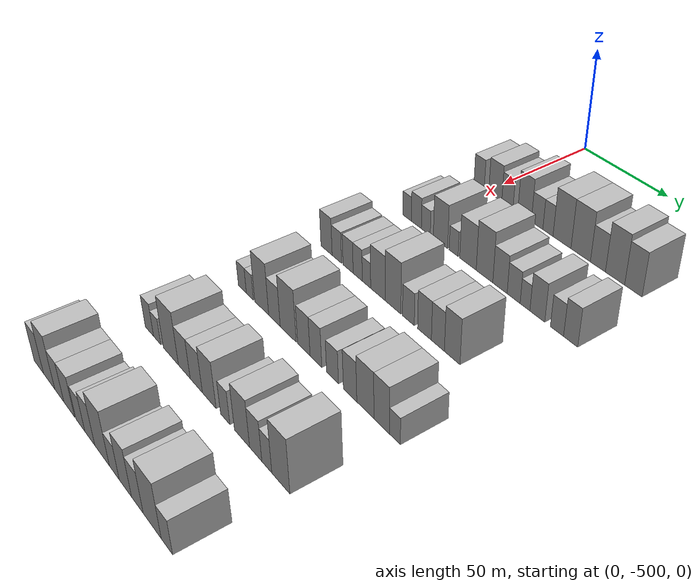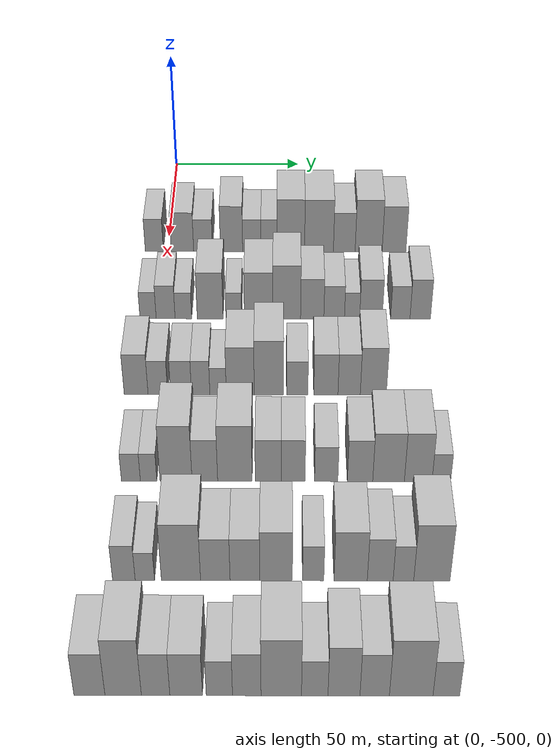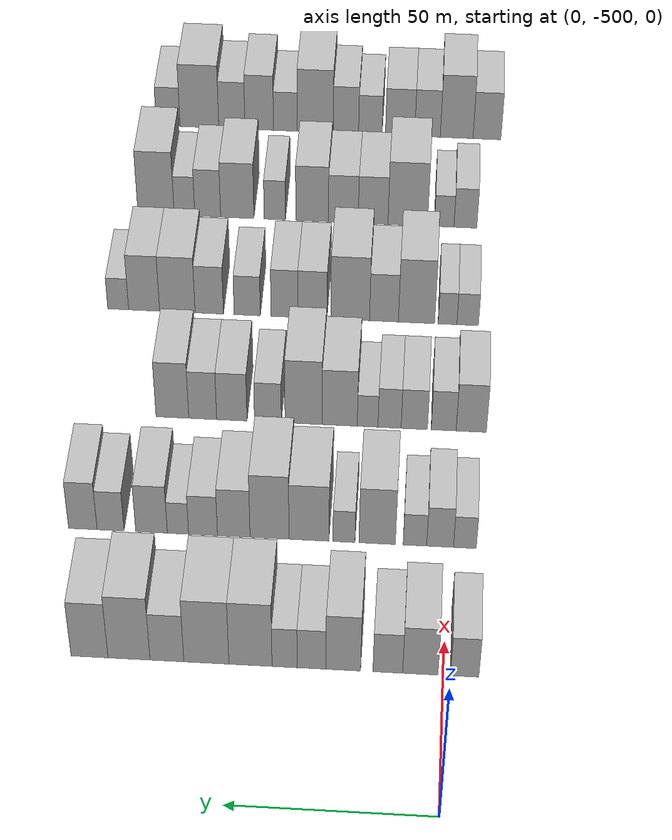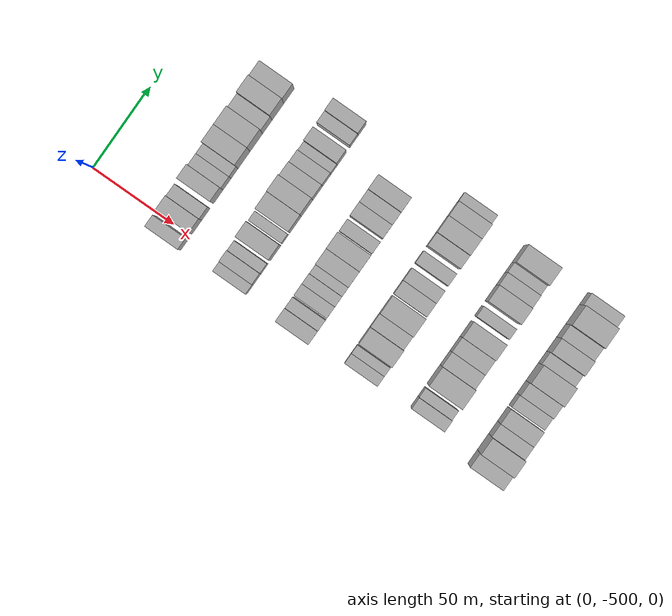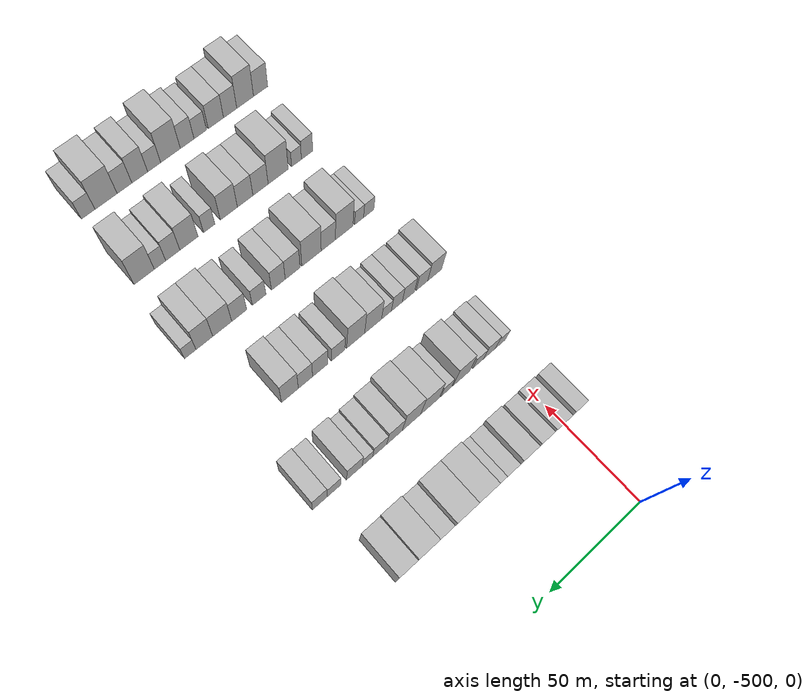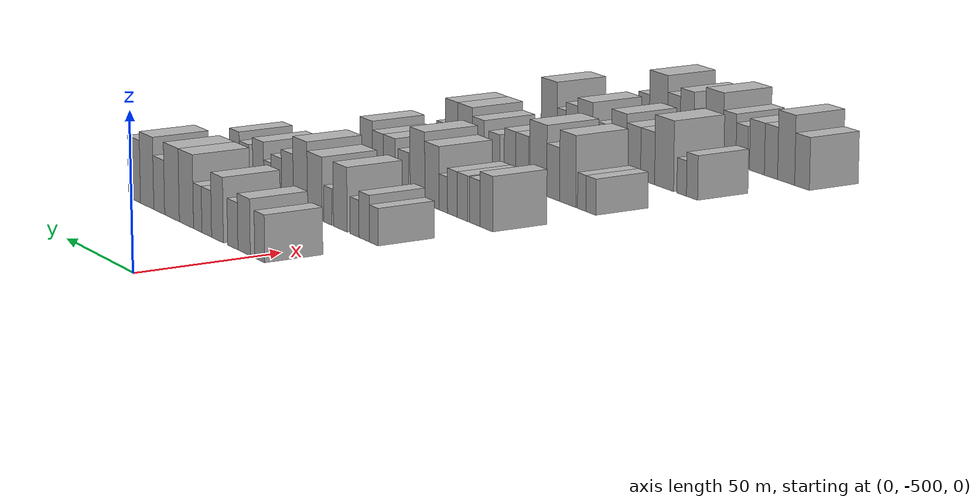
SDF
<sdf version="1.6">
 <world name="default">
  <model name="building_14">
   <static>1</static>
   <pose>50.0000 -505.0866 0 0.000000 0.000000 0.000000</pose>
   <link name="link">
    <pose>0 0 7.50 0 0 0</pose>
    <collision name="collision"><geometry><box><size>20.0000 6.8700 15.0000</size></box></geometry></collision>
    <visual name="visual">
     <cast_shadows>0</cast_shadows>
     <geometry><box><size>20.0000 6.8700 15.0000</size></box></geometry>
     <material>
      <script>
       <uri>model://HANNAS_wall/materials/scripts</uri>
       <uri>model://HANNAS_wall/materials/textures</uri>
       <name>vrc/HANNAS_wall</name>
      </script>
     </material>
    </visual>
   </link>
  </model>
  <model name="building_15">
   <static>1</static>
   <pose>50.0000 -494.3796 0 0.000000 0.000000 0.000000</pose>
   <link name="link">
    <pose>0 0 9.00 0 0 0</pose>
    <collision name="collision"><geometry><box><size>20.0000 8.5440 18.0000</size></box></geometry></collision>
    <visual name="visual">
     <cast_shadows>0</cast_shadows>
     <geometry><box><size>20.0000 8.5440 18.0000</size></box></geometry>
     <material>
      <script>
       <uri>model://HANNAS_wall/materials/scripts</uri>
       <uri>model://HANNAS_wall/materials/textures</uri>
       <name>vrc/HANNAS_wall</name>
      </script>
     </material>
    </visual>
   </link>
  </model>
  <model name="building_16">
   <static>1</static>
   <pose>50.0000 -486.5111 0 0.000000 0.000000 0.000000</pose>
   <link name="link">
    <pose>0 0 7.50 0 0 0</pose>
    <collision name="collision"><geometry><box><size>20.0000 7.1932 15.0000</size></box></geometry></collision>
    <visual name="visual">
     <cast_shadows>0</cast_shadows>
     <geometry><box><size>20.0000 7.1932 15.0000</size></box></geometry>
     <material>
      <script>
       <uri>model://HANNAS_wall/materials/scripts</uri>
       <uri>model://HANNAS_wall/materials/textures</uri>
       <name>vrc/HANNAS_wall</name>
      </script>
     </material>
    </visual>
   </link>
  </model>
  <model name="building_17">
   <static>1</static>
   <pose>50.0000 -475.6811 0 0.000000 0.000000 0.000000</pose>
   <link name="link">
    <pose>0 0 10.50 0 0 0</pose>
    <collision name="collision"><geometry><box><size>20.0000 8.4666 21.0000</size></box></geometry></collision>
    <visual name="visual">
     <cast_shadows>0</cast_shadows>
     <geometry><box><size>20.0000 8.4666 21.0000</size></box></geometry>
     <material>
      <script>
       <uri>model://HANNAS_wall/materials/scripts</uri>
       <uri>model://HANNAS_wall/materials/textures</uri>
       <name>vrc/HANNAS_wall</name>
      </script>
     </material>
    </visual>
   </link>
  </model>
  <model name="building_18">
   <static>1</static>
   <pose>50.0000 -467.9588 0 0.000000 0.000000 0.000000</pose>
   <link name="link">
    <pose>0 0 7.50 0 0 0</pose>
    <collision name="collision"><geometry><box><size>20.0000 6.9781 15.0000</size></box></geometry></collision>
    <visual name="visual">
     <cast_shadows>0</cast_shadows>
     <geometry><box><size>20.0000 6.9781 15.0000</size></box></geometry>
     <material>
      <script>
       <uri>model://HANNAS_wall/materials/scripts</uri>
       <uri>model://HANNAS_wall/materials/textures</uri>
       <name>vrc/HANNAS_wall</name>
      </script>
     </material>
    </visual>
   </link>
  </model>
  <model name="building_19">
   <static>1</static>
   <pose>50.0000 -461.4284 0 0.000000 0.000000 0.000000</pose>
   <link name="link">
    <pose>0 0 7.50 0 0 0</pose>
    <collision name="collision"><geometry><box><size>20.0000 6.0826 15.0000</size></box></geometry></collision>
    <visual name="visual">
     <cast_shadows>0</cast_shadows>
     <geometry><box><size>20.0000 6.0826 15.0000</size></box></geometry>
     <material>
      <script>
       <uri>model://HANNAS_wall/materials/scripts</uri>
       <uri>model://HANNAS_wall/materials/textures</uri>
       <name>vrc/HANNAS_wall</name>
      </script>
     </material>
    </visual>
   </link>
  </model>
  <model name="building_20">
   <static>1</static>
   <pose>50.0000 -453.1435 0 0.000000 0.000000 0.000000</pose>
   <link name="link">
    <pose>0 0 12.00 0 0 0</pose>
    <collision name="collision"><geometry><box><size>20.0000 10.4874 24.0000</size></box></geometry></collision>
    <visual name="visual">
     <cast_shadows>0</cast_shadows>
     <geometry><box><size>20.0000 10.4874 24.0000</size></box></geometry>
     <material>
      <script>
       <uri>model://HANNAS_wall/materials/scripts</uri>
       <uri>model://HANNAS_wall/materials/textures</uri>
       <name>vrc/HANNAS_wall</name>
      </script>
     </material>
    </visual>
   </link>
  </model>
  <model name="building_21">
   <static>1</static>
   <pose>50.0000 -442.4043 0 0.000000 0.000000 0.000000</pose>
   <link name="link">
    <pose>0 0 12.00 0 0 0</pose>
    <collision name="collision"><geometry><box><size>20.0000 10.9910 24.0000</size></box></geometry></collision>
    <visual name="visual">
     <cast_shadows>0</cast_shadows>
     <geometry><box><size>20.0000 10.9910 24.0000</size></box></geometry>
     <material>
      <script>
       <uri>model://HANNAS_wall/materials/scripts</uri>
       <uri>model://HANNAS_wall/materials/textures</uri>
       <name>vrc/HANNAS_wall</name>
      </script>
     </material>
    </visual>
   </link>
  </model>
  <model name="building_22">
   <static>1</static>
   <pose>50.0000 -432.7748 0 0.000000 0.000000 0.000000</pose>
   <link name="link">
    <pose>0 0 9.00 0 0 0</pose>
    <collision name="collision"><geometry><box><size>20.0000 8.2678 18.0000</size></box></geometry></collision>
    <visual name="visual">
     <cast_shadows>0</cast_shadows>
     <geometry><box><size>20.0000 8.2678 18.0000</size></box></geometry>
     <material>
      <script>
       <uri>model://HANNAS_wall/materials/scripts</uri>
       <uri>model://HANNAS_wall/materials/textures</uri>
       <name>vrc/HANNAS_wall</name>
      </script>
     </material>
    </visual>
   </link>
  </model>
  <model name="building_23">
   <static>1</static>
   <pose>50.0000 -423.5001 0 0.000000 0.000000 0.000000</pose>
   <link name="link">
    <pose>0 0 12.00 0 0 0</pose>
    <collision name="collision"><geometry><box><size>20.0000 10.2818 24.0000</size></box></geometry></collision>
    <visual name="visual">
     <cast_shadows>0</cast_shadows>
     <geometry><box><size>20.0000 10.2818 24.0000</size></box></geometry>
     <material>
      <script>
       <uri>model://HANNAS_wall/materials/scripts</uri>
       <uri>model://HANNAS_wall/materials/textures</uri>
       <name>vrc/HANNAS_wall</name>
      </script>
     </material>
    </visual>
   </link>
  </model>
  <model name="building_24">
   <static>1</static>
   <pose>50.0000 -413.8279 0 0.000000 0.000000 0.000000</pose>
   <link name="link">
    <pose>0 0 10.50 0 0 0</pose>
    <collision name="collision"><geometry><box><size>20.0000 9.0625 21.0000</size></box></geometry></collision>
    <visual name="visual">
     <cast_shadows>0</cast_shadows>
     <geometry><box><size>20.0000 9.0625 21.0000</size></box></geometry>
     <material>
      <script>
       <uri>model://HANNAS_wall/materials/scripts</uri>
       <uri>model://HANNAS_wall/materials/textures</uri>
       <name>vrc/HANNAS_wall</name>
      </script>
     </material>
    </visual>
   </link>
  </model>
  <model name="building_151">
   <static>1</static>
   <pose>90.0000 -504.5698 0 0.000000 0.000000 0.000000</pose>
   <link name="link">
    <pose>0 0 6.00 0 0 0</pose>
    <collision name="collision"><geometry><box><size>20.0000 5.8009 12.0000</size></box></geometry></collision>
    <visual name="visual">
     <cast_shadows>0</cast_shadows>
     <geometry><box><size>20.0000 5.8009 12.0000</size></box></geometry>
     <material>
      <script>
       <uri>model://HANNAS_wall/materials/scripts</uri>
       <uri>model://HANNAS_wall/materials/textures</uri>
       <name>vrc/HANNAS_wall</name>
      </script>
     </material>
    </visual>
   </link>
  </model>
  <model name="building_152">
   <static>1</static>
   <pose>90.0000 -498.2702 0 0.000000 0.000000 0.000000</pose>
   <link name="link">
    <pose>0 0 7.50 0 0 0</pose>
    <collision name="collision"><geometry><box><size>20.0000 6.7983 15.0000</size></box></geometry></collision>
    <visual name="visual">
     <cast_shadows>0</cast_shadows>
     <geometry><box><size>20.0000 6.7983 15.0000</size></box></geometry>
     <material>
      <script>
       <uri>model://HANNAS_wall/materials/scripts</uri>
       <uri>model://HANNAS_wall/materials/textures</uri>
       <name>vrc/HANNAS_wall</name>
      </script>
     </material>
    </visual>
   </link>
  </model>
  <model name="building_153">
   <static>1</static>
   <pose>90.0000 -491.8866 0 0.000000 0.000000 0.000000</pose>
   <link name="link">
    <pose>0 0 6.00 0 0 0</pose>
    <collision name="collision"><geometry><box><size>20.0000 5.9689 12.0000</size></box></geometry></collision>
    <visual name="visual">
     <cast_shadows>0</cast_shadows>
     <geometry><box><size>20.0000 5.9689 12.0000</size></box></geometry>
     <material>
      <script>
       <uri>model://HANNAS_wall/materials/scripts</uri>
       <uri>model://HANNAS_wall/materials/textures</uri>
       <name>vrc/HANNAS_wall</name>
      </script>
     </material>
    </visual>
   </link>
  </model>
  <model name="building_154">
   <static>1</static>
   <pose>90.0000 -482.2595 0 0.000000 0.000000 0.000000</pose>
   <link name="link">
    <pose>0 0 10.50 0 0 0</pose>
    <collision name="collision"><geometry><box><size>20.0000 9.2852 21.0000</size></box></geometry></collision>
    <visual name="visual">
     <cast_shadows>0</cast_shadows>
     <geometry><box><size>20.0000 9.2852 21.0000</size></box></geometry>
     <material>
      <script>
       <uri>model://HANNAS_wall/materials/scripts</uri>
       <uri>model://HANNAS_wall/materials/textures</uri>
       <name>vrc/HANNAS_wall</name>
      </script>
     </material>
    </visual>
   </link>
  </model>
  <model name="building_155">
   <static>1</static>
   <pose>90.0000 -473.7920 0 0.000000 0.000000 0.000000</pose>
   <link name="link">
    <pose>0 0 6.00 0 0 0</pose>
    <collision name="collision"><geometry><box><size>20.0000 5.6497 12.0000</size></box></geometry></collision>
    <visual name="visual">
     <cast_shadows>0</cast_shadows>
     <geometry><box><size>20.0000 5.6497 12.0000</size></box></geometry>
     <material>
      <script>
       <uri>model://HANNAS_wall/materials/scripts</uri>
       <uri>model://HANNAS_wall/materials/textures</uri>
       <name>vrc/HANNAS_wall</name>
      </script>
     </material>
    </visual>
   </link>
  </model>
  <model name="building_156">
   <static>1</static>
   <pose>90.0000 -464.8663 0 0.000000 0.000000 0.000000</pose>
   <link name="link">
    <pose>0 0 10.50 0 0 0</pose>
    <collision name="collision"><geometry><box><size>20.0000 10.2016 21.0000</size></box></geometry></collision>
    <visual name="visual">
     <cast_shadows>0</cast_shadows>
     <geometry><box><size>20.0000 10.2016 21.0000</size></box></geometry>
     <material>
      <script>
       <uri>model://HANNAS_wall/materials/scripts</uri>
       <uri>model://HANNAS_wall/materials/textures</uri>
       <name>vrc/HANNAS_wall</name>
      </script>
     </material>
    </visual>
   </link>
  </model>
  <model name="building_157">
   <static>1</static>
   <pose>90.0000 -454.7904 0 0.000000 0.000000 0.000000</pose>
   <link name="link">
    <pose>0 0 12.00 0 0 0</pose>
    <collision name="collision"><geometry><box><size>20.0000 9.9503 24.0000</size></box></geometry></collision>
    <visual name="visual">
     <cast_shadows>0</cast_shadows>
     <geometry><box><size>20.0000 9.9503 24.0000</size></box></geometry>
     <material>
      <script>
       <uri>model://HANNAS_wall/materials/scripts</uri>
       <uri>model://HANNAS_wall/materials/textures</uri>
       <name>vrc/HANNAS_wall</name>
      </script>
     </material>
    </visual>
   </link>
  </model>
  <model name="building_158">
   <static>1</static>
   <pose>90.0000 -445.6402 0 0.000000 0.000000 0.000000</pose>
   <link name="link">
    <pose>0 0 9.00 0 0 0</pose>
    <collision name="collision"><geometry><box><size>20.0000 8.3501 18.0000</size></box></geometry></collision>
    <visual name="visual">
     <cast_shadows>0</cast_shadows>
     <geometry><box><size>20.0000 8.3501 18.0000</size></box></geometry>
     <material>
      <script>
       <uri>model://HANNAS_wall/materials/scripts</uri>
       <uri>model://HANNAS_wall/materials/textures</uri>
       <name>vrc/HANNAS_wall</name>
      </script>
     </material>
    </visual>
   </link>
  </model>
  <model name="building_159">
   <static>1</static>
   <pose>90.0000 -437.7634 0 0.000000 0.000000 0.000000</pose>
   <link name="link">
    <pose>0 0 7.50 0 0 0</pose>
    <collision name="collision"><geometry><box><size>20.0000 7.4035 15.0000</size></box></geometry></collision>
    <visual name="visual">
     <cast_shadows>0</cast_shadows>
     <geometry><box><size>20.0000 7.4035 15.0000</size></box></geometry>
     <material>
      <script>
       <uri>model://HANNAS_wall/materials/scripts</uri>
       <uri>model://HANNAS_wall/materials/textures</uri>
       <name>vrc/HANNAS_wall</name>
      </script>
     </material>
    </visual>
   </link>
  </model>
  <model name="building_160">
   <static>1</static>
   <pose>90.0000 -431.3394 0 0.000000 0.000000 0.000000</pose>
   <link name="link">
    <pose>0 0 6.00 0 0 0</pose>
    <collision name="collision"><geometry><box><size>20.0000 5.4446 12.0000</size></box></geometry></collision>
    <visual name="visual">
     <cast_shadows>0</cast_shadows>
     <geometry><box><size>20.0000 5.4446 12.0000</size></box></geometry>
     <material>
      <script>
       <uri>model://HANNAS_wall/materials/scripts</uri>
       <uri>model://HANNAS_wall/materials/textures</uri>
       <name>vrc/HANNAS_wall</name>
      </script>
     </material>
    </visual>
   </link>
  </model>
  <model name="building_161">
   <static>1</static>
   <pose>90.0000 -424.5576 0 0.000000 0.000000 0.000000</pose>
   <link name="link">
    <pose>0 0 9.00 0 0 0</pose>
    <collision name="collision"><geometry><box><size>20.0000 8.1190 18.0000</size></box></geometry></collision>
    <visual name="visual">
     <cast_shadows>0</cast_shadows>
     <geometry><box><size>20.0000 8.1190 18.0000</size></box></geometry>
     <material>
      <script>
       <uri>model://HANNAS_wall/materials/scripts</uri>
       <uri>model://HANNAS_wall/materials/textures</uri>
       <name>vrc/HANNAS_wall</name>
      </script>
     </material>
    </visual>
   </link>
  </model>
  <model name="building_162">
   <static>1</static>
   <pose>90.0000 -414.0226 0 0.000000 0.000000 0.000000</pose>
   <link name="link">
    <pose>0 0 7.50 0 0 0</pose>
    <collision name="collision"><geometry><box><size>20.0000 6.9511 15.0000</size></box></geometry></collision>
    <visual name="visual">
     <cast_shadows>0</cast_shadows>
     <geometry><box><size>20.0000 6.9511 15.0000</size></box></geometry>
     <material>
      <script>
       <uri>model://HANNAS_wall/materials/scripts</uri>
       <uri>model://HANNAS_wall/materials/textures</uri>
       <name>vrc/HANNAS_wall</name>
      </script>
     </material>
    </visual>
   </link>
  </model>
  <model name="building_163">
   <static>1</static>
   <pose>90.0000 -406.8737 0 0.000000 0.000000 0.000000</pose>
   <link name="link">
    <pose>0 0 9.00 0 0 0</pose>
    <collision name="collision"><geometry><box><size>20.0000 7.3466 18.0000</size></box></geometry></collision>
    <visual name="visual">
     <cast_shadows>0</cast_shadows>
     <geometry><box><size>20.0000 7.3466 18.0000</size></box></geometry>
     <material>
      <script>
       <uri>model://HANNAS_wall/materials/scripts</uri>
       <uri>model://HANNAS_wall/materials/textures</uri>
       <name>vrc/HANNAS_wall</name>
      </script>
     </material>
    </visual>
   </link>
  </model>
  <model name="building_296">
   <static>1</static>
   <pose>130.0000 -505.6824 0 0.000000 0.000000 0.000000</pose>
   <link name="link">
    <pose>0 0 9.00 0 0 0</pose>
    <collision name="collision"><geometry><box><size>20.0000 8.0399 18.0000</size></box></geometry></collision>
    <visual name="visual">
     <cast_shadows>0</cast_shadows>
     <geometry><box><size>20.0000 8.0399 18.0000</size></box></geometry>
     <material>
      <script>
       <uri>model://HANNAS_wall/materials/scripts</uri>
       <uri>model://HANNAS_wall/materials/textures</uri>
       <name>vrc/HANNAS_wall</name>
      </script>
     </material>
    </visual>
   </link>
  </model>
  <model name="building_297">
   <static>1</static>
   <pose>130.0000 -498.3432 0 0.000000 0.000000 0.000000</pose>
   <link name="link">
    <pose>0 0 7.50 0 0 0</pose>
    <collision name="collision"><geometry><box><size>20.0000 6.6384 15.0000</size></box></geometry></collision>
    <visual name="visual">
     <cast_shadows>0</cast_shadows>
     <geometry><box><size>20.0000 6.6384 15.0000</size></box></geometry>
     <material>
      <script>
       <uri>model://HANNAS_wall/materials/scripts</uri>
       <uri>model://HANNAS_wall/materials/textures</uri>
       <name>vrc/HANNAS_wall</name>
      </script>
     </material>
    </visual>
   </link>
  </model>
  <model name="building_298">
   <static>1</static>
   <pose>130.0000 -490.5147 0 0.000000 0.000000 0.000000</pose>
   <link name="link">
    <pose>0 0 7.50 0 0 0</pose>
    <collision name="collision"><geometry><box><size>20.0000 7.0187 15.0000</size></box></geometry></collision>
    <visual name="visual">
     <cast_shadows>0</cast_shadows>
     <geometry><box><size>20.0000 7.0187 15.0000</size></box></geometry>
     <material>
      <script>
       <uri>model://HANNAS_wall/materials/scripts</uri>
       <uri>model://HANNAS_wall/materials/textures</uri>
       <name>vrc/HANNAS_wall</name>
      </script>
     </material>
    </visual>
   </link>
  </model>
  <model name="building_299">
   <static>1</static>
   <pose>130.0000 -483.9126 0 0.000000 0.000000 0.000000</pose>
   <link name="link">
    <pose>0 0 7.50 0 0 0</pose>
    <collision name="collision"><geometry><box><size>20.0000 6.1856 15.0000</size></box></geometry></collision>
    <visual name="visual">
     <cast_shadows>0</cast_shadows>
     <geometry><box><size>20.0000 6.1856 15.0000</size></box></geometry>
     <material>
      <script>
       <uri>model://HANNAS_wall/materials/scripts</uri>
       <uri>model://HANNAS_wall/materials/textures</uri>
       <name>vrc/HANNAS_wall</name>
      </script>
     </material>
    </visual>
   </link>
  </model>
  <model name="building_300">
   <static>1</static>
   <pose>130.0000 -478.0517 0 0.000000 0.000000 0.000000</pose>
   <link name="link">
    <pose>0 0 6.00 0 0 0</pose>
    <collision name="collision"><geometry><box><size>20.0000 5.5362 12.0000</size></box></geometry></collision>
    <visual name="visual">
     <cast_shadows>0</cast_shadows>
     <geometry><box><size>20.0000 5.5362 12.0000</size></box></geometry>
     <material>
      <script>
       <uri>model://HANNAS_wall/materials/scripts</uri>
       <uri>model://HANNAS_wall/materials/textures</uri>
       <name>vrc/HANNAS_wall</name>
      </script>
     </material>
    </visual>
   </link>
  </model>
  <model name="building_301">
   <static>1</static>
   <pose>130.0000 -470.5623 0 0.000000 0.000000 0.000000</pose>
   <link name="link">
    <pose>0 0 10.50 0 0 0</pose>
    <collision name="collision"><geometry><box><size>20.0000 9.4425 21.0000</size></box></geometry></collision>
    <visual name="visual">
     <cast_shadows>0</cast_shadows>
     <geometry><box><size>20.0000 9.4425 21.0000</size></box></geometry>
     <material>
      <script>
       <uri>model://HANNAS_wall/materials/scripts</uri>
       <uri>model://HANNAS_wall/materials/textures</uri>
       <name>vrc/HANNAS_wall</name>
      </script>
     </material>
    </visual>
   </link>
  </model>
  <model name="building_302">
   <static>1</static>
   <pose>130.0000 -460.9009 0 0.000000 0.000000 0.000000</pose>
   <link name="link">
    <pose>0 0 12.00 0 0 0</pose>
    <collision name="collision"><geometry><box><size>20.0000 9.8803 24.0000</size></box></geometry></collision>
    <visual name="visual">
     <cast_shadows>0</cast_shadows>
     <geometry><box><size>20.0000 9.8803 24.0000</size></box></geometry>
     <material>
      <script>
       <uri>model://HANNAS_wall/materials/scripts</uri>
       <uri>model://HANNAS_wall/materials/textures</uri>
       <name>vrc/HANNAS_wall</name>
      </script>
     </material>
    </visual>
   </link>
  </model>
  <model name="building_303">
   <static>1</static>
   <pose>130.0000 -451.3663 0 0.000000 0.000000 0.000000</pose>
   <link name="link">
    <pose>0 0 7.50 0 0 0</pose>
    <collision name="collision"><geometry><box><size>20.0000 7.1888 15.0000</size></box></geometry></collision>
    <visual name="visual">
     <cast_shadows>0</cast_shadows>
     <geometry><box><size>20.0000 7.1888 15.0000</size></box></geometry>
     <material>
      <script>
       <uri>model://HANNAS_wall/materials/scripts</uri>
       <uri>model://HANNAS_wall/materials/textures</uri>
       <name>vrc/HANNAS_wall</name>
      </script>
     </material>
    </visual>
   </link>
  </model>
  <model name="building_304">
   <static>1</static>
   <pose>130.0000 -441.6929 0 0.000000 0.000000 0.000000</pose>
   <link name="link">
    <pose>0 0 9.00 0 0 0</pose>
    <collision name="collision"><geometry><box><size>20.0000 8.1580 18.0000</size></box></geometry></collision>
    <visual name="visual">
     <cast_shadows>0</cast_shadows>
     <geometry><box><size>20.0000 8.1580 18.0000</size></box></geometry>
     <material>
      <script>
       <uri>model://HANNAS_wall/materials/scripts</uri>
       <uri>model://HANNAS_wall/materials/textures</uri>
       <name>vrc/HANNAS_wall</name>
      </script>
     </material>
    </visual>
   </link>
  </model>
  <model name="building_305">
   <static>1</static>
   <pose>130.0000 -433.8575 0 0.000000 0.000000 0.000000</pose>
   <link name="link">
    <pose>0 0 9.00 0 0 0</pose>
    <collision name="collision"><geometry><box><size>20.0000 7.5128 18.0000</size></box></geometry></collision>
    <visual name="visual">
     <cast_shadows>0</cast_shadows>
     <geometry><box><size>20.0000 7.5128 18.0000</size></box></geometry>
     <material>
      <script>
       <uri>model://HANNAS_wall/materials/scripts</uri>
       <uri>model://HANNAS_wall/materials/textures</uri>
       <name>vrc/HANNAS_wall</name>
      </script>
     </material>
    </visual>
   </link>
  </model>
  <model name="building_306">
   <static>1</static>
   <pose>130.0000 -425.7034 0 0.000000 0.000000 0.000000</pose>
   <link name="link">
    <pose>0 0 10.50 0 0 0</pose>
    <collision name="collision"><geometry><box><size>20.0000 8.7952 21.0000</size></box></geometry></collision>
    <visual name="visual">
     <cast_shadows>0</cast_shadows>
     <geometry><box><size>20.0000 8.7952 21.0000</size></box></geometry>
     <material>
      <script>
       <uri>model://HANNAS_wall/materials/scripts</uri>
       <uri>model://HANNAS_wall/materials/textures</uri>
       <name>vrc/HANNAS_wall</name>
      </script>
     </material>
    </visual>
   </link>
  </model>
  <model name="building_429">
   <static>1</static>
   <pose>170.0000 -504.1810 0 0.000000 0.000000 0.000000</pose>
   <link name="link">
    <pose>0 0 6.00 0 0 0</pose>
    <collision name="collision"><geometry><box><size>20.0000 5.9871 12.0000</size></box></geometry></collision>
    <visual name="visual">
     <cast_shadows>0</cast_shadows>
     <geometry><box><size>20.0000 5.9871 12.0000</size></box></geometry>
     <material>
      <script>
       <uri>model://HANNAS_wall/materials/scripts</uri>
       <uri>model://HANNAS_wall/materials/textures</uri>
       <name>vrc/HANNAS_wall</name>
      </script>
     </material>
    </visual>
   </link>
  </model>
  <model name="building_430">
   <static>1</static>
   <pose>170.0000 -498.5791 0 0.000000 0.000000 0.000000</pose>
   <link name="link">
    <pose>0 0 6.00 0 0 0</pose>
    <collision name="collision"><geometry><box><size>20.0000 5.2166 12.0000</size></box></geometry></collision>
    <visual name="visual">
     <cast_shadows>0</cast_shadows>
     <geometry><box><size>20.0000 5.2166 12.0000</size></box></geometry>
     <material>
      <script>
       <uri>model://HANNAS_wall/materials/scripts</uri>
       <uri>model://HANNAS_wall/materials/textures</uri>
       <name>vrc/HANNAS_wall</name>
      </script>
     </material>
    </visual>
   </link>
  </model>
  <model name="building_431">
   <static>1</static>
   <pose>170.0000 -489.9221 0 0.000000 0.000000 0.000000</pose>
   <link name="link">
    <pose>0 0 12.00 0 0 0</pose>
    <collision name="collision"><geometry><box><size>20.0000 10.0975 24.0000</size></box></geometry></collision>
    <visual name="visual">
     <cast_shadows>0</cast_shadows>
     <geometry><box><size>20.0000 10.0975 24.0000</size></box></geometry>
     <material>
      <script>
       <uri>model://HANNAS_wall/materials/scripts</uri>
       <uri>model://HANNAS_wall/materials/textures</uri>
       <name>vrc/HANNAS_wall</name>
      </script>
     </material>
    </visual>
   </link>
  </model>
  <model name="building_432">
   <static>1</static>
   <pose>170.0000 -480.8344 0 0.000000 0.000000 0.000000</pose>
   <link name="link">
    <pose>0 0 9.00 0 0 0</pose>
    <collision name="collision"><geometry><box><size>20.0000 8.0777 18.0000</size></box></geometry></collision>
    <visual name="visual">
     <cast_shadows>0</cast_shadows>
     <geometry><box><size>20.0000 8.0777 18.0000</size></box></geometry>
     <material>
      <script>
       <uri>model://HANNAS_wall/materials/scripts</uri>
       <uri>model://HANNAS_wall/materials/textures</uri>
       <name>vrc/HANNAS_wall</name>
      </script>
     </material>
    </visual>
   </link>
  </model>
  <model name="building_433">
   <static>1</static>
   <pose>170.0000 -471.3594 0 0.000000 0.000000 0.000000</pose>
   <link name="link">
    <pose>0 0 12.00 0 0 0</pose>
    <collision name="collision"><geometry><box><size>20.0000 10.8723 24.0000</size></box></geometry></collision>
    <visual name="visual">
     <cast_shadows>0</cast_shadows>
     <geometry><box><size>20.0000 10.8723 24.0000</size></box></geometry>
     <material>
      <script>
       <uri>model://HANNAS_wall/materials/scripts</uri>
       <uri>model://HANNAS_wall/materials/textures</uri>
       <name>vrc/HANNAS_wall</name>
      </script>
     </material>
    </visual>
   </link>
  </model>
  <model name="building_434">
   <static>1</static>
   <pose>170.0000 -460.8351 0 0.000000 0.000000 0.000000</pose>
   <link name="link">
    <pose>0 0 9.00 0 0 0</pose>
    <collision name="collision"><geometry><box><size>20.0000 8.1763 18.0000</size></box></geometry></collision>
    <visual name="visual">
     <cast_shadows>0</cast_shadows>
     <geometry><box><size>20.0000 8.1763 18.0000</size></box></geometry>
     <material>
      <script>
       <uri>model://HANNAS_wall/materials/scripts</uri>
       <uri>model://HANNAS_wall/materials/textures</uri>
       <name>vrc/HANNAS_wall</name>
      </script>
     </material>
    </visual>
   </link>
  </model>
  <model name="building_435">
   <static>1</static>
   <pose>170.0000 -452.9875 0 0.000000 0.000000 0.000000</pose>
   <link name="link">
    <pose>0 0 9.00 0 0 0</pose>
    <collision name="collision"><geometry><box><size>20.0000 7.5189 18.0000</size></box></geometry></collision>
    <visual name="visual">
     <cast_shadows>0</cast_shadows>
     <geometry><box><size>20.0000 7.5189 18.0000</size></box></geometry>
     <material>
      <script>
       <uri>model://HANNAS_wall/materials/scripts</uri>
       <uri>model://HANNAS_wall/materials/textures</uri>
       <name>vrc/HANNAS_wall</name>
      </script>
     </material>
    </visual>
   </link>
  </model>
  <model name="building_436">
   <static>1</static>
   <pose>170.0000 -442.5509 0 0.000000 0.000000 0.000000</pose>
   <link name="link">
    <pose>0 0 7.50 0 0 0</pose>
    <collision name="collision"><geometry><box><size>20.0000 7.3543 15.0000</size></box></geometry></collision>
    <visual name="visual">
     <cast_shadows>0</cast_shadows>
     <geometry><box><size>20.0000 7.3543 15.0000</size></box></geometry>
     <material>
      <script>
       <uri>model://HANNAS_wall/materials/scripts</uri>
       <uri>model://HANNAS_wall/materials/textures</uri>
       <name>vrc/HANNAS_wall</name>
      </script>
     </material>
    </visual>
   </link>
  </model>
  <model name="building_437">
   <static>1</static>
   <pose>170.0000 -431.8751 0 0.000000 0.000000 0.000000</pose>
   <link name="link">
    <pose>0 0 9.00 0 0 0</pose>
    <collision name="collision"><geometry><box><size>20.0000 7.9972 18.0000</size></box></geometry></collision>
    <visual name="visual">
     <cast_shadows>0</cast_shadows>
     <geometry><box><size>20.0000 7.9972 18.0000</size></box></geometry>
     <material>
      <script>
       <uri>model://HANNAS_wall/materials/scripts</uri>
       <uri>model://HANNAS_wall/materials/textures</uri>
       <name>vrc/HANNAS_wall</name>
      </script>
     </material>
    </visual>
   </link>
  </model>
  <model name="building_438">
   <static>1</static>
   <pose>170.0000 -422.8831 0 0.000000 0.000000 0.000000</pose>
   <link name="link">
    <pose>0 0 10.50 0 0 0</pose>
    <collision name="collision"><geometry><box><size>20.0000 9.9869 21.0000</size></box></geometry></collision>
    <visual name="visual">
     <cast_shadows>0</cast_shadows>
     <geometry><box><size>20.0000 9.9869 21.0000</size></box></geometry>
     <material>
      <script>
       <uri>model://HANNAS_wall/materials/scripts</uri>
       <uri>model://HANNAS_wall/materials/textures</uri>
       <name>vrc/HANNAS_wall</name>
      </script>
     </material>
    </visual>
   </link>
  </model>
  <model name="building_439">
   <static>1</static>
   <pose>170.0000 -413.5238 0 0.000000 0.000000 0.000000</pose>
   <link name="link">
    <pose>0 0 10.50 0 0 0</pose>
    <collision name="collision"><geometry><box><size>20.0000 8.7317 21.0000</size></box></geometry></collision>
    <visual name="visual">
     <cast_shadows>0</cast_shadows>
     <geometry><box><size>20.0000 8.7317 21.0000</size></box></geometry>
     <material>
      <script>
       <uri>model://HANNAS_wall/materials/scripts</uri>
       <uri>model://HANNAS_wall/materials/textures</uri>
       <name>vrc/HANNAS_wall</name>
      </script>
     </material>
    </visual>
   </link>
  </model>
  <model name="building_440">
   <static>1</static>
   <pose>170.0000 -406.2206 0 0.000000 0.000000 0.000000</pose>
   <link name="link">
    <pose>0 0 6.00 0 0 0</pose>
    <collision name="collision"><geometry><box><size>20.0000 5.8746 12.0000</size></box></geometry></collision>
    <visual name="visual">
     <cast_shadows>0</cast_shadows>
     <geometry><box><size>20.0000 5.8746 12.0000</size></box></geometry>
     <material>
      <script>
       <uri>model://HANNAS_wall/materials/scripts</uri>
       <uri>model://HANNAS_wall/materials/textures</uri>
       <name>vrc/HANNAS_wall</name>
      </script>
     </material>
    </visual>
   </link>
  </model>
  <model name="building_569">
   <static>1</static>
   <pose>210.0000 -502.9626 0 0.000000 0.000000 0.000000</pose>
   <link name="link">
    <pose>0 0 7.50 0 0 0</pose>
    <collision name="collision"><geometry><box><size>20.0000 6.6428 15.0000</size></box></geometry></collision>
    <visual name="visual">
     <cast_shadows>0</cast_shadows>
     <geometry><box><size>20.0000 6.6428 15.0000</size></box></geometry>
     <material>
      <script>
       <uri>model://HANNAS_wall/materials/scripts</uri>
       <uri>model://HANNAS_wall/materials/textures</uri>
       <name>vrc/HANNAS_wall</name>
      </script>
     </material>
    </visual>
   </link>
  </model>
  <model name="building_570">
   <static>1</static>
   <pose>210.0000 -496.7883 0 0.000000 0.000000 0.000000</pose>
   <link name="link">
    <pose>0 0 6.00 0 0 0</pose>
    <collision name="collision"><geometry><box><size>20.0000 5.7060 12.0000</size></box></geometry></collision>
    <visual name="visual">
     <cast_shadows>0</cast_shadows>
     <geometry><box><size>20.0000 5.7060 12.0000</size></box></geometry>
     <material>
      <script>
       <uri>model://HANNAS_wall/materials/scripts</uri>
       <uri>model://HANNAS_wall/materials/textures</uri>
       <name>vrc/HANNAS_wall</name>
      </script>
     </material>
    </visual>
   </link>
  </model>
  <model name="building_571">
   <static>1</static>
   <pose>210.0000 -486.1789 0 0.000000 0.000000 0.000000</pose>
   <link name="link">
    <pose>0 0 12.00 0 0 0</pose>
    <collision name="collision"><geometry><box><size>20.0000 11.5128 24.0000</size></box></geometry></collision>
    <visual name="visual">
     <cast_shadows>0</cast_shadows>
     <geometry><box><size>20.0000 11.5128 24.0000</size></box></geometry>
     <material>
      <script>
       <uri>model://HANNAS_wall/materials/scripts</uri>
       <uri>model://HANNAS_wall/materials/textures</uri>
       <name>vrc/HANNAS_wall</name>
      </script>
     </material>
    </visual>
   </link>
  </model>
  <model name="building_572">
   <static>1</static>
   <pose>210.0000 -476.0877 0 0.000000 0.000000 0.000000</pose>
   <link name="link">
    <pose>0 0 9.00 0 0 0</pose>
    <collision name="collision"><geometry><box><size>20.0000 8.6696 18.0000</size></box></geometry></collision>
    <visual name="visual">
     <cast_shadows>0</cast_shadows>
     <geometry><box><size>20.0000 8.6696 18.0000</size></box></geometry>
     <material>
      <script>
       <uri>model://HANNAS_wall/materials/scripts</uri>
       <uri>model://HANNAS_wall/materials/textures</uri>
       <name>vrc/HANNAS_wall</name>
      </script>
     </material>
    </visual>
   </link>
  </model>
  <model name="building_573">
   <static>1</static>
   <pose>210.0000 -467.3842 0 0.000000 0.000000 0.000000</pose>
   <link name="link">
    <pose>0 0 9.00 0 0 0</pose>
    <collision name="collision"><geometry><box><size>20.0000 8.7373 18.0000</size></box></geometry></collision>
    <visual name="visual">
     <cast_shadows>0</cast_shadows>
     <geometry><box><size>20.0000 8.7373 18.0000</size></box></geometry>
     <material>
      <script>
       <uri>model://HANNAS_wall/materials/scripts</uri>
       <uri>model://HANNAS_wall/materials/textures</uri>
       <name>vrc/HANNAS_wall</name>
      </script>
     </material>
    </visual>
   </link>
  </model>
  <model name="building_574">
   <static>1</static>
   <pose>210.0000 -458.2469 0 0.000000 0.000000 0.000000</pose>
   <link name="link">
    <pose>0 0 10.50 0 0 0</pose>
    <collision name="collision"><geometry><box><size>20.0000 9.5374 21.0000</size></box></geometry></collision>
    <visual name="visual">
     <cast_shadows>0</cast_shadows>
     <geometry><box><size>20.0000 9.5374 21.0000</size></box></geometry>
     <material>
      <script>
       <uri>model://HANNAS_wall/materials/scripts</uri>
       <uri>model://HANNAS_wall/materials/textures</uri>
       <name>vrc/HANNAS_wall</name>
      </script>
     </material>
    </visual>
   </link>
  </model>
  <model name="building_575">
   <static>1</static>
   <pose>210.0000 -447.3544 0 0.000000 0.000000 0.000000</pose>
   <link name="link">
    <pose>0 0 7.50 0 0 0</pose>
    <collision name="collision"><geometry><box><size>20.0000 6.2476 15.0000</size></box></geometry></collision>
    <visual name="visual">
     <cast_shadows>0</cast_shadows>
     <geometry><box><size>20.0000 6.2476 15.0000</size></box></geometry>
     <material>
      <script>
       <uri>model://HANNAS_wall/materials/scripts</uri>
       <uri>model://HANNAS_wall/materials/textures</uri>
       <name>vrc/HANNAS_wall</name>
      </script>
     </material>
    </visual>
   </link>
  </model>
  <model name="building_576">
   <static>1</static>
   <pose>210.0000 -436.3439 0 0.000000 0.000000 0.000000</pose>
   <link name="link">
    <pose>0 0 10.50 0 0 0</pose>
    <collision name="collision"><geometry><box><size>20.0000 9.7733 21.0000</size></box></geometry></collision>
    <visual name="visual">
     <cast_shadows>0</cast_shadows>
     <geometry><box><size>20.0000 9.7733 21.0000</size></box></geometry>
     <material>
      <script>
       <uri>model://HANNAS_wall/materials/scripts</uri>
       <uri>model://HANNAS_wall/materials/textures</uri>
       <name>vrc/HANNAS_wall</name>
      </script>
     </material>
    </visual>
   </link>
  </model>
  <model name="building_577">
   <static>1</static>
   <pose>210.0000 -427.6605 0 0.000000 0.000000 0.000000</pose>
   <link name="link">
    <pose>0 0 9.00 0 0 0</pose>
    <collision name="collision"><geometry><box><size>20.0000 7.5935 18.0000</size></box></geometry></collision>
    <visual name="visual">
     <cast_shadows>0</cast_shadows>
     <geometry><box><size>20.0000 7.5935 18.0000</size></box></geometry>
     <material>
      <script>
       <uri>model://HANNAS_wall/materials/scripts</uri>
       <uri>model://HANNAS_wall/materials/textures</uri>
       <name>vrc/HANNAS_wall</name>
      </script>
     </material>
    </visual>
   </link>
  </model>
  <model name="building_578">
   <static>1</static>
   <pose>210.0000 -420.8355 0 0.000000 0.000000 0.000000</pose>
   <link name="link">
    <pose>0 0 7.50 0 0 0</pose>
    <collision name="collision"><geometry><box><size>20.0000 6.0565 15.0000</size></box></geometry></collision>
    <visual name="visual">
     <cast_shadows>0</cast_shadows>
     <geometry><box><size>20.0000 6.0565 15.0000</size></box></geometry>
     <material>
      <script>
       <uri>model://HANNAS_wall/materials/scripts</uri>
       <uri>model://HANNAS_wall/materials/textures</uri>
       <name>vrc/HANNAS_wall</name>
      </script>
     </material>
    </visual>
   </link>
  </model>
  <model name="building_579">
   <static>1</static>
   <pose>210.0000 -412.4856 0 0.000000 0.000000 0.000000</pose>
   <link name="link">
    <pose>0 0 12.00 0 0 0</pose>
    <collision name="collision"><geometry><box><size>20.0000 10.6432 24.0000</size></box></geometry></collision>
    <visual name="visual">
     <cast_shadows>0</cast_shadows>
     <geometry><box><size>20.0000 10.6432 24.0000</size></box></geometry>
     <material>
      <script>
       <uri>model://HANNAS_wall/materials/scripts</uri>
       <uri>model://HANNAS_wall/materials/textures</uri>
       <name>vrc/HANNAS_wall</name>
      </script>
     </material>
    </visual>
   </link>
  </model>
  <model name="building_702">
   <static>1</static>
   <pose>250.0000 -508.9028 0 0.000000 0.000000 0.000000</pose>
   <link name="link">
    <pose>0 0 9.00 0 0 0</pose>
    <collision name="collision"><geometry><box><size>20.0000 8.4466 18.0000</size></box></geometry></collision>
    <visual name="visual">
     <cast_shadows>0</cast_shadows>
     <geometry><box><size>20.0000 8.4466 18.0000</size></box></geometry>
     <material>
      <script>
       <uri>model://HANNAS_wall/materials/scripts</uri>
       <uri>model://HANNAS_wall/materials/textures</uri>
       <name>vrc/HANNAS_wall</name>
      </script>
     </material>
    </visual>
   </link>
  </model>
  <model name="building_703">
   <static>1</static>
   <pose>250.0000 -499.7231 0 0.000000 0.000000 0.000000</pose>
   <link name="link">
    <pose>0 0 12.00 0 0 0</pose>
    <collision name="collision"><geometry><box><size>20.0000 9.9130 24.0000</size></box></geometry></collision>
    <visual name="visual">
     <cast_shadows>0</cast_shadows>
     <geometry><box><size>20.0000 9.9130 24.0000</size></box></geometry>
     <material>
      <script>
       <uri>model://HANNAS_wall/materials/scripts</uri>
       <uri>model://HANNAS_wall/materials/textures</uri>
       <name>vrc/HANNAS_wall</name>
      </script>
     </material>
    </visual>
   </link>
  </model>
  <model name="building_704">
   <static>1</static>
   <pose>250.0000 -490.8889 0 0.000000 0.000000 0.000000</pose>
   <link name="link">
    <pose>0 0 9.00 0 0 0</pose>
    <collision name="collision"><geometry><box><size>20.0000 7.7554 18.0000</size></box></geometry></collision>
    <visual name="visual">
     <cast_shadows>0</cast_shadows>
     <geometry><box><size>20.0000 7.7554 18.0000</size></box></geometry>
     <material>
      <script>
       <uri>model://HANNAS_wall/materials/scripts</uri>
       <uri>model://HANNAS_wall/materials/textures</uri>
       <name>vrc/HANNAS_wall</name>
      </script>
     </material>
    </visual>
   </link>
  </model>
  <model name="building_705">
   <static>1</static>
   <pose>250.0000 -482.5663 0 0.000000 0.000000 0.000000</pose>
   <link name="link">
    <pose>0 0 9.00 0 0 0</pose>
    <collision name="collision"><geometry><box><size>20.0000 8.8897 18.0000</size></box></geometry></collision>
    <visual name="visual">
     <cast_shadows>0</cast_shadows>
     <geometry><box><size>20.0000 8.8897 18.0000</size></box></geometry>
     <material>
      <script>
       <uri>model://HANNAS_wall/materials/scripts</uri>
       <uri>model://HANNAS_wall/materials/textures</uri>
       <name>vrc/HANNAS_wall</name>
      </script>
     </material>
    </visual>
   </link>
  </model>
  <model name="building_706">
   <static>1</static>
   <pose>250.0000 -473.5469 0 0.000000 0.000000 0.000000</pose>
   <link name="link">
    <pose>0 0 7.50 0 0 0</pose>
    <collision name="collision"><geometry><box><size>20.0000 7.1492 15.0000</size></box></geometry></collision>
    <visual name="visual">
     <cast_shadows>0</cast_shadows>
     <geometry><box><size>20.0000 7.1492 15.0000</size></box></geometry>
     <material>
      <script>
       <uri>model://HANNAS_wall/materials/scripts</uri>
       <uri>model://HANNAS_wall/materials/textures</uri>
       <name>vrc/HANNAS_wall</name>
      </script>
     </material>
    </visual>
   </link>
  </model>
  <model name="building_707">
   <static>1</static>
   <pose>250.0000 -466.0903 0 0.000000 0.000000 0.000000</pose>
   <link name="link">
    <pose>0 0 9.00 0 0 0</pose>
    <collision name="collision"><geometry><box><size>20.0000 7.7639 18.0000</size></box></geometry></collision>
    <visual name="visual">
     <cast_shadows>0</cast_shadows>
     <geometry><box><size>20.0000 7.7639 18.0000</size></box></geometry>
     <material>
      <script>
       <uri>model://HANNAS_wall/materials/scripts</uri>
       <uri>model://HANNAS_wall/materials/textures</uri>
       <name>vrc/HANNAS_wall</name>
      </script>
     </material>
    </visual>
   </link>
  </model>
  <model name="building_708">
   <static>1</static>
   <pose>250.0000 -456.7077 0 0.000000 0.000000 0.000000</pose>
   <link name="link">
    <pose>0 0 12.00 0 0 0</pose>
    <collision name="collision"><geometry><box><size>20.0000 11.0013 24.0000</size></box></geometry></collision>
    <visual name="visual">
     <cast_shadows>0</cast_shadows>
     <geometry><box><size>20.0000 11.0013 24.0000</size></box></geometry>
     <material>
      <script>
       <uri>model://HANNAS_wall/materials/scripts</uri>
       <uri>model://HANNAS_wall/materials/textures</uri>
       <name>vrc/HANNAS_wall</name>
      </script>
     </material>
    </visual>
   </link>
  </model>
  <model name="building_709">
   <static>1</static>
   <pose>250.0000 -447.6052 0 0.000000 0.000000 0.000000</pose>
   <link name="link">
    <pose>0 0 7.50 0 0 0</pose>
    <collision name="collision"><geometry><box><size>20.0000 7.2038 15.0000</size></box></geometry></collision>
    <visual name="visual">
     <cast_shadows>0</cast_shadows>
     <geometry><box><size>20.0000 7.2038 15.0000</size></box></geometry>
     <material>
      <script>
       <uri>model://HANNAS_wall/materials/scripts</uri>
       <uri>model://HANNAS_wall/materials/textures</uri>
       <name>vrc/HANNAS_wall</name>
      </script>
     </material>
    </visual>
   </link>
  </model>
  <model name="building_710">
   <static>1</static>
   <pose>250.0000 -439.6548 0 0.000000 0.000000 0.000000</pose>
   <link name="link">
    <pose>0 0 10.50 0 0 0</pose>
    <collision name="collision"><geometry><box><size>20.0000 8.6970 21.0000</size></box></geometry></collision>
    <visual name="visual">
     <cast_shadows>0</cast_shadows>
     <geometry><box><size>20.0000 8.6970 21.0000</size></box></geometry>
     <material>
      <script>
       <uri>model://HANNAS_wall/materials/scripts</uri>
       <uri>model://HANNAS_wall/materials/textures</uri>
       <name>vrc/HANNAS_wall</name>
      </script>
     </material>
    </visual>
   </link>
  </model>
  <model name="building_711">
   <static>1</static>
   <pose>250.0000 -431.2994 0 0.000000 0.000000 0.000000</pose>
   <link name="link">
    <pose>0 0 9.00 0 0 0</pose>
    <collision name="collision"><geometry><box><size>20.0000 8.0138 18.0000</size></box></geometry></collision>
    <visual name="visual">
     <cast_shadows>0</cast_shadows>
     <geometry><box><size>20.0000 8.0138 18.0000</size></box></geometry>
     <material>
      <script>
       <uri>model://HANNAS_wall/materials/scripts</uri>
       <uri>model://HANNAS_wall/materials/textures</uri>
       <name>vrc/HANNAS_wall</name>
      </script>
     </material>
    </visual>
   </link>
  </model>
  <model name="building_712">
   <static>1</static>
   <pose>250.0000 -421.3683 0 0.000000 0.000000 0.000000</pose>
   <link name="link">
    <pose>0 0 12.00 0 0 0</pose>
    <collision name="collision"><geometry><box><size>20.0000 11.8483 24.0000</size></box></geometry></collision>
    <visual name="visual">
     <cast_shadows>0</cast_shadows>
     <geometry><box><size>20.0000 11.8483 24.0000</size></box></geometry>
     <material>
      <script>
       <uri>model://HANNAS_wall/materials/scripts</uri>
       <uri>model://HANNAS_wall/materials/textures</uri>
       <name>vrc/HANNAS_wall</name>
      </script>
     </material>
    </visual>
   </link>
  </model>
  <model name="building_713">
   <static>1</static>
   <pose>250.0000 -411.8136 0 0.000000 0.000000 0.000000</pose>
   <link name="link">
    <pose>0 0 7.50 0 0 0</pose>
    <collision name="collision"><geometry><box><size>20.0000 7.2612 15.0000</size></box></geometry></collision>
    <visual name="visual">
     <cast_shadows>0</cast_shadows>
     <geometry><box><size>20.0000 7.2612 15.0000</size></box></geometry>
     <material>
      <script>
       <uri>model://HANNAS_wall/materials/scripts</uri>
       <uri>model://HANNAS_wall/materials/textures</uri>
       <name>vrc/HANNAS_wall</name>
      </script>
     </material>
    </visual>
   </link>
  </model>
 </world>
</sdf>
